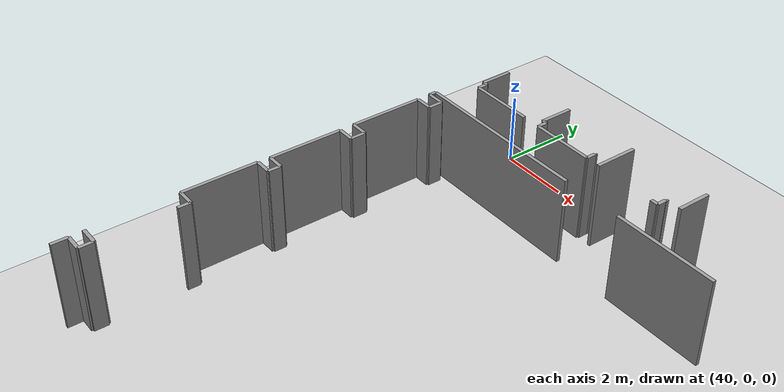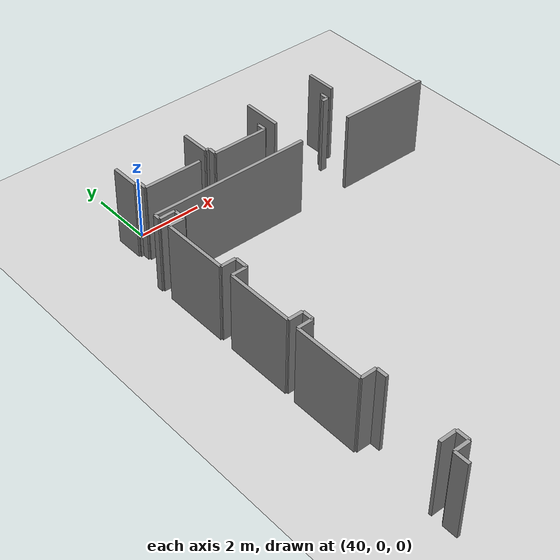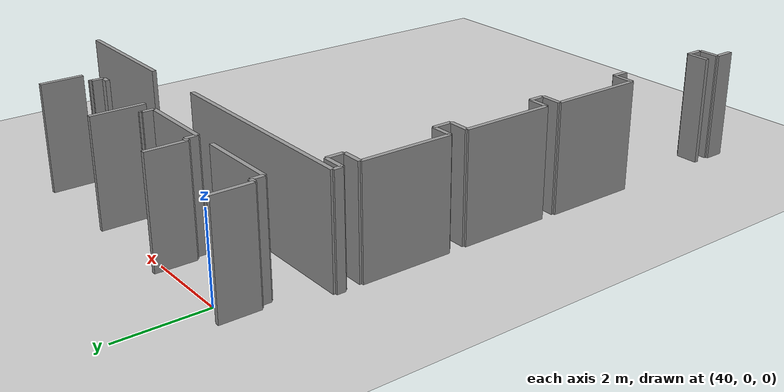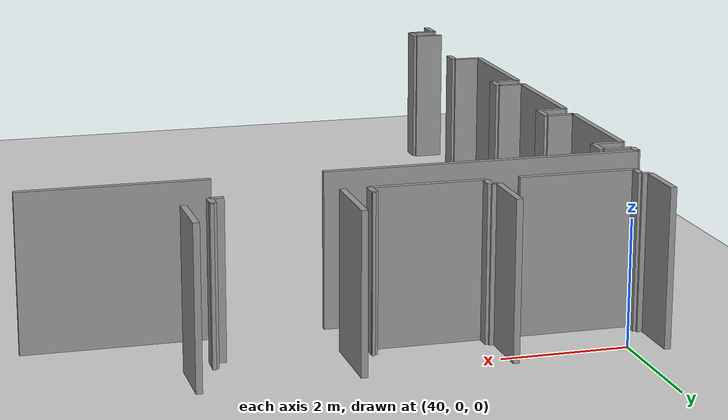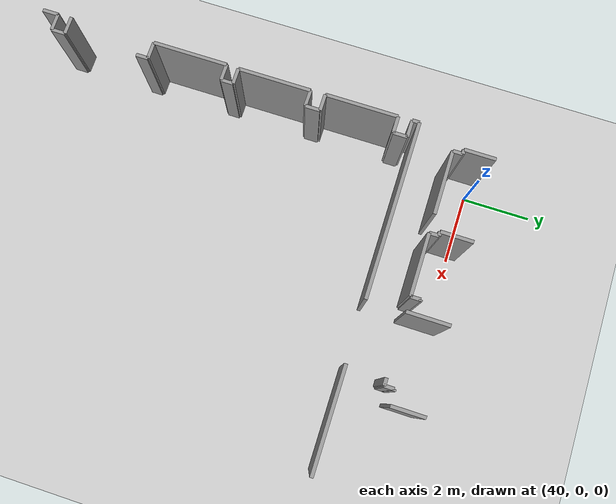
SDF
<sdf version="1.6">
 <world name="default">
  <model name="ground_plane">
   <static>1</static>
   <link name="link">
    <collision name="collision">
     <geometry><plane><normal>0 0 1</normal><size>100 100</size></plane></geometry>
     <surface><friction><ode><mu>100</mu><mu2>50</mu2></ode></friction></surface>
    </collision>
    <visual name="visual">
     <cast_shadows>0</cast_shadows>
     <geometry><plane><normal>0 0 1</normal><size>100 100</size></plane></geometry>
     <material>
      <script><uri>file://media/materials/scripts/gazebo.material</uri><name>Gazebo/Grey</name></script>
     </material>
    </visual>
   </link>
  </model>
  <model name="50010541">
   <static>1</static>
   <link name="Wall_275">
    <collision name="Wall_275_Collision">
     <geometry><box><size>0.953118454293 0.1 2.5</size></box></geometry>
     <pose>0.476559227146 0 1.25 0 0 0</pose>
    </collision>
    <visual name="Wall_275_Visual">
     <pose>0.476559227146 0 1.25 0 0 0</pose>
     <geometry><box><size>0.953118454293 0.1 2.5</size></box></geometry>
     <material>
      <script><uri>file://media/materials/scripts/gazebo.material</uri><name>Gazebo/Grey</name></script>
      <ambient>1 1 1 1</ambient>
     </material>
    </visual>
    <pose>99.5215365671 -13.7375750574 0 0 0 1.57079632679</pose>
   </link>
   <link name="Wall_278">
    <collision name="Wall_278_Collision">
     <geometry><box><size>0.0571261726734 0.1 2.5</size></box></geometry>
     <pose>0.0285630863367 0 1.25 0 0 0</pose>
    </collision>
    <visual name="Wall_278_Visual">
     <pose>0.0285630863367 0 1.25 0 0 0</pose>
     <geometry><box><size>0.0571261726734 0.1 2.5</size></box></geometry>
     <material>
      <script><uri>file://media/materials/scripts/gazebo.material</uri><name>Gazebo/Grey</name></script>
      <ambient>1 1 1 1</ambient>
     </material>
    </visual>
    <pose>99.1432343569 -13.7501428154 0 0 0 3.14159265359</pose>
   </link>
   <link name="Wall_279">
    <collision name="Wall_279_Collision">
     <geometry><box><size>0.271412793724 0.1 2.5</size></box></geometry>
     <pose>0.135706396862 0 1.25 0 0 0</pose>
    </collision>
    <visual name="Wall_279_Visual">
     <pose>0.135706396862 0 1.25 0 0 0</pose>
     <geometry><box><size>0.271412793724 0.1 2.5</size></box></geometry>
     <material>
      <script><uri>file://media/materials/scripts/gazebo.material</uri><name>Gazebo/Grey</name></script>
      <ambient>1 1 1 1</ambient>
     </material>
    </visual>
    <pose>99.0861081843 -13.7501428154 0 0 0 -1.57079632679</pose>
   </link>
   <link name="Wall_280">
    <collision name="Wall_280_Collision">
     <geometry><box><size>0.208193162632 0.1 2.5</size></box></geometry>
     <pose>0.104096581316 0 1.25 0 0 0</pose>
    </collision>
    <visual name="Wall_280_Visual">
     <pose>0.104096581316 0 1.25 0 0 0</pose>
     <geometry><box><size>0.208193162632 0.1 2.5</size></box></geometry>
     <material>
      <script><uri>file://media/materials/scripts/gazebo.material</uri><name>Gazebo/Grey</name></script>
      <ambient>1 1 1 1</ambient>
     </material>
    </visual>
    <pose>99.0861081843 -14.0215556092 0 0 0 3.14159265359</pose>
   </link>
   <link name="Wall_281">
    <collision name="Wall_281_Collision">
     <geometry><box><size>1.21564495449 0.1 2.5</size></box></geometry>
     <pose>0.607822477245 0 1.25 0 0 0</pose>
    </collision>
    <visual name="Wall_281_Visual">
     <pose>0.607822477245 0 1.25 0 0 0</pose>
     <geometry><box><size>1.21564495449 0.1 2.5</size></box></geometry>
     <material>
      <script><uri>file://media/materials/scripts/gazebo.material</uri><name>Gazebo/Grey</name></script>
      <ambient>1 1 1 1</ambient>
     </material>
    </visual>
    <pose>97.1070036688 -14.0215556092 0 0 0 1.57079632679</pose>
   </link>
   <link name="Wall_284">
    <collision name="Wall_284_Collision">
     <geometry><box><size>0.0469704086426 0.1 2.5</size></box></geometry>
     <pose>0.0234852043213 0 1.25 0 0 0</pose>
    </collision>
    <visual name="Wall_284_Visual">
     <pose>0.0234852043213 0 1.25 0 0 0</pose>
     <geometry><box><size>0.0469704086426 0.1 2.5</size></box></geometry>
     <material>
      <script><uri>file://media/materials/scripts/gazebo.material</uri><name>Gazebo/Grey</name></script>
      <ambient>1 1 1 1</ambient>
     </material>
    </visual>
    <pose>96.7413961637 -13.736559481 0 0 0 3.14159265359</pose>
   </link>
   <link name="Wall_285">
    <collision name="Wall_285_Collision">
     <geometry><box><size>0.275855940487 0.1 2.5</size></box></geometry>
     <pose>0.137927970244 0 1.25 0 0 0</pose>
    </collision>
    <visual name="Wall_285_Visual">
     <pose>0.137927970244 0 1.25 0 0 0</pose>
     <geometry><box><size>0.275855940487 0.1 2.5</size></box></geometry>
     <material>
      <script><uri>file://media/materials/scripts/gazebo.material</uri><name>Gazebo/Grey</name></script>
      <ambient>1 1 1 1</ambient>
     </material>
    </visual>
    <pose>96.694425755 -13.736559481 0 0 0 -1.57079632679</pose>
   </link>
   <link name="Wall_286">
    <collision name="Wall_286_Collision">
     <geometry><box><size>1.78106711691 0.1 2.5</size></box></geometry>
     <pose>0.890533558453 0 1.25 0 0 0</pose>
    </collision>
    <visual name="Wall_286_Visual">
     <pose>0.890533558453 0 1.25 0 0 0</pose>
     <geometry><box><size>1.78106711691 0.1 2.5</size></box></geometry>
     <material>
      <script><uri>file://media/materials/scripts/gazebo.material</uri><name>Gazebo/Grey</name></script>
      <ambient>1 1 1 1</ambient>
     </material>
    </visual>
    <pose>96.694425755 -14.0124154215 0 0 0 3.14159265359</pose>
   </link>
   <link name="Wall_287">
    <collision name="Wall_287_Collision">
     <geometry><box><size>0.270778058472 0.1 2.5</size></box></geometry>
     <pose>0.135389029236 0 1.25 0 0 0</pose>
    </collision>
    <visual name="Wall_287_Visual">
     <pose>0.135389029236 0 1.25 0 0 0</pose>
     <geometry><box><size>0.270778058472 0.1 2.5</size></box></geometry>
     <material>
      <script><uri>file://media/materials/scripts/gazebo.material</uri><name>Gazebo/Grey</name></script>
      <ambient>1 1 1 1</ambient>
     </material>
    </visual>
    <pose>94.9133586381 -14.0124154215 0 0 0 1.57079632679</pose>
   </link>
   <link name="Wall_288">
    <collision name="Wall_288_Collision">
     <geometry><box><size>0.120599697866 0.1 2.5</size></box></geometry>
     <pose>0.060299848933 0 1.25 0 0 0</pose>
    </collision>
    <visual name="Wall_288_Visual">
     <pose>0.060299848933 0 1.25 0 0 0</pose>
     <geometry><box><size>0.120599697866 0.1 2.5</size></box></geometry>
     <material>
      <script><uri>file://media/materials/scripts/gazebo.material</uri><name>Gazebo/Grey</name></script>
      <ambient>1 1 1 1</ambient>
     </material>
    </visual>
    <pose>94.9133586381 -13.7416373631 0 0 0 3.14159265359</pose>
   </link>
   <link name="Wall_289">
    <collision name="Wall_289_Collision">
     <geometry><box><size>0.922016426948 0.1 2.5</size></box></geometry>
     <pose>0.461008213474 0 1.25 0 0 0</pose>
    </collision>
    <visual name="Wall_289_Visual">
     <pose>0.461008213474 0 1.25 0 0 0</pose>
     <geometry><box><size>0.922016426948 0.1 2.5</size></box></geometry>
     <material>
      <script><uri>file://media/materials/scripts/gazebo.material</uri><name>Gazebo/Grey</name></script>
      <ambient>1 1 1 1</ambient>
     </material>
    </visual>
    <pose>94.7927589402 -13.7416373631 0 0 0 1.57079632679</pose>
   </link>
   <link name="Wall_294">
    <collision name="Wall_294_Collision">
     <geometry><box><size>1.84707958311 0.1 2.5</size></box></geometry>
     <pose>0.923539791553 0 1.25 0 0 0</pose>
    </collision>
    <visual name="Wall_294_Visual">
     <pose>0.923539791553 0 1.25 0 0 0</pose>
     <geometry><box><size>1.84707958311 0.1 2.5</size></box></geometry>
     <material>
      <script><uri>file://media/materials/scripts/gazebo.material</uri><name>Gazebo/Grey</name></script>
      <ambient>1 1 1 1</ambient>
     </material>
    </visual>
    <pose>94.3751031445 -14.016096886 0 0 0 3.14159265359</pose>
   </link>
   <link name="Wall_295">
    <collision name="Wall_295_Collision">
     <geometry><box><size>0.278521828545 0.1 2.5</size></box></geometry>
     <pose>0.139260914273 0 1.25 0 0 0</pose>
    </collision>
    <visual name="Wall_295_Visual">
     <pose>0.139260914273 0 1.25 0 0 0</pose>
     <geometry><box><size>0.278521828545 0.1 2.5</size></box></geometry>
     <material>
      <script><uri>file://media/materials/scripts/gazebo.material</uri><name>Gazebo/Grey</name></script>
      <ambient>1 1 1 1</ambient>
     </material>
    </visual>
    <pose>92.5280235614 -14.016096886 0 0 0 1.57079632679</pose>
   </link>
   <link name="Wall_296">
    <collision name="Wall_296_Collision">
     <geometry><box><size>0.129485991393 0.1 2.5</size></box></geometry>
     <pose>0.0647429956965 0 1.25 0 0 0</pose>
    </collision>
    <visual name="Wall_296_Visual">
     <pose>0.0647429956965 0 1.25 0 0 0</pose>
     <geometry><box><size>0.129485991393 0.1 2.5</size></box></geometry>
     <material>
      <script><uri>file://media/materials/scripts/gazebo.material</uri><name>Gazebo/Grey</name></script>
      <ambient>1 1 1 1</ambient>
     </material>
    </visual>
    <pose>92.5280235614 -13.7375750574 0 0 0 3.14159265359</pose>
   </link>
   <link name="Wall_297">
    <collision name="Wall_297_Collision">
     <geometry><box><size>0.901958792987 0.1 2.5</size></box></geometry>
     <pose>0.450979396494 0 1.25 0 0 0</pose>
    </collision>
    <visual name="Wall_297_Visual">
     <pose>0.450979396494 0 1.25 0 0 0</pose>
     <geometry><box><size>0.901958792987 0.1 2.5</size></box></geometry>
     <material>
      <script><uri>file://media/materials/scripts/gazebo.material</uri><name>Gazebo/Grey</name></script>
      <ambient>1 1 1 1</ambient>
     </material>
    </visual>
    <pose>92.39853757 -13.7375750574 0 0 0 1.57079632679</pose>
   </link>
   <link name="Wall_378">
    <collision name="Wall_378_Collision">
     <geometry><box><size>0.457009381387 0.1 2.5</size></box></geometry>
     <pose>0.228504690694 0 1.25 0 0 0</pose>
    </collision>
    <visual name="Wall_378_Visual">
     <pose>0.228504690694 0 1.25 0 0 0</pose>
     <geometry><box><size>0.457009381387 0.1 2.5</size></box></geometry>
     <material>
      <script><uri>file://media/materials/scripts/gazebo.material</uri><name>Gazebo/Grey</name></script>
      <ambient>1 1 1 1</ambient>
     </material>
    </visual>
    <pose>92.0418163584 -26.1612481434 0 0 0 1.57079632679</pose>
   </link>
   <link name="Wall_379">
    <collision name="Wall_379_Collision">
     <geometry><box><size>0.482398791464 0.1 2.5</size></box></geometry>
     <pose>0.241199395732 0 1.25 0 0 0</pose>
    </collision>
    <visual name="Wall_379_Visual">
     <pose>0.241199395732 0 1.25 0 0 0</pose>
     <geometry><box><size>0.482398791464 0.1 2.5</size></box></geometry>
     <material>
      <script><uri>file://media/materials/scripts/gazebo.material</uri><name>Gazebo/Grey</name></script>
      <ambient>1 1 1 1</ambient>
     </material>
    </visual>
    <pose>92.0418163584 -25.704238762 0 0 0 0.0</pose>
   </link>
   <link name="Wall_380">
    <collision name="Wall_380_Collision">
     <geometry><box><size>0.393535856194 0.1 2.5</size></box></geometry>
     <pose>0.196767928097 0 1.25 0 0 0</pose>
    </collision>
    <visual name="Wall_380_Visual">
     <pose>0.196767928097 0 1.25 0 0 0</pose>
     <geometry><box><size>0.393535856194 0.1 2.5</size></box></geometry>
     <material>
      <script><uri>file://media/materials/scripts/gazebo.material</uri><name>Gazebo/Grey</name></script>
      <ambient>1 1 1 1</ambient>
     </material>
    </visual>
    <pose>92.5242151499 -25.704238762 0 0 0 1.57079632679</pose>
   </link>
   <link name="Wall_381">
    <collision name="Wall_381_Collision">
     <geometry><box><size>0.52048290658 0.1 2.5</size></box></geometry>
     <pose>0.26024145329 0 1.25 0 0 0</pose>
    </collision>
    <visual name="Wall_381_Visual">
     <pose>0.26024145329 0 1.25 0 0 0</pose>
     <geometry><box><size>0.52048290658 0.1 2.5</size></box></geometry>
     <material>
      <script><uri>file://media/materials/scripts/gazebo.material</uri><name>Gazebo/Grey</name></script>
      <ambient>1 1 1 1</ambient>
     </material>
    </visual>
    <pose>92.5242151499 -25.3107029058 0 0 0 3.14159265359</pose>
   </link>
   <link name="Wall_384">
    <collision name="Wall_384_Collision">
     <geometry><box><size>0.350500806114 0.1 2.5</size></box></geometry>
     <pose>0.175250403057 0 1.25 0 0 0</pose>
    </collision>
    <visual name="Wall_384_Visual">
     <pose>0.175250403057 0 1.25 0 0 0</pose>
     <geometry><box><size>0.350500806114 0.1 2.5</size></box></geometry>
     <material>
      <script><uri>file://media/materials/scripts/gazebo.material</uri><name>Gazebo/Grey</name></script>
      <ambient>1 1 1 1</ambient>
     </material>
    </visual>
    <pose>92.5153288563 -23.1795158239 0 0 0 1.57079632679</pose>
   </link>
   <link name="Wall_385">
    <collision name="Wall_385_Collision">
     <geometry><box><size>0.492554555495 0.1 2.5</size></box></geometry>
     <pose>0.246277277747 0 1.25 0 0 0</pose>
    </collision>
    <visual name="Wall_385_Visual">
     <pose>0.246277277747 0 1.25 0 0 0</pose>
     <geometry><box><size>0.492554555495 0.1 2.5</size></box></geometry>
     <material>
      <script><uri>file://media/materials/scripts/gazebo.material</uri><name>Gazebo/Grey</name></script>
      <ambient>1 1 1 1</ambient>
     </material>
    </visual>
    <pose>92.5153288563 -22.8290150178 0 0 0 3.14159265359</pose>
   </link>
   <link name="Wall_386">
    <collision name="Wall_386_Collision">
     <geometry><box><size>2.15352976274 0.1 2.5</size></box></geometry>
     <pose>1.07676488137 0 1.25 0 0 0</pose>
    </collision>
    <visual name="Wall_386_Visual">
     <pose>1.07676488137 0 1.25 0 0 0</pose>
     <geometry><box><size>2.15352976274 0.1 2.5</size></box></geometry>
     <material>
      <script><uri>file://media/materials/scripts/gazebo.material</uri><name>Gazebo/Grey</name></script>
      <ambient>1 1 1 1</ambient>
     </material>
    </visual>
    <pose>92.0227743008 -22.8290150178 0 0 0 1.57079632679</pose>
   </link>
   <link name="Wall_387">
    <collision name="Wall_387_Collision">
     <geometry><box><size>0.476051438945 0.1 2.5</size></box></geometry>
     <pose>0.238025719472 0 1.25 0 0 0</pose>
    </collision>
    <visual name="Wall_387_Visual">
     <pose>0.238025719472 0 1.25 0 0 0</pose>
     <geometry><box><size>0.476051438945 0.1 2.5</size></box></geometry>
     <material>
      <script><uri>file://media/materials/scripts/gazebo.material</uri><name>Gazebo/Grey</name></script>
      <ambient>1 1 1 1</ambient>
     </material>
    </visual>
    <pose>92.0227743008 -20.6754852551 0 0 0 0.0</pose>
   </link>
   <link name="Wall_388">
    <collision name="Wall_388_Collision">
     <geometry><box><size>0.350627753164 0.1 2.5</size></box></geometry>
     <pose>0.175313876582 0 1.25 0 0 0</pose>
    </collision>
    <visual name="Wall_388_Visual">
     <pose>0.175313876582 0 1.25 0 0 0</pose>
     <geometry><box><size>0.350627753164 0.1 2.5</size></box></geometry>
     <material>
      <script><uri>file://media/materials/scripts/gazebo.material</uri><name>Gazebo/Grey</name></script>
      <ambient>1 1 1 1</ambient>
     </material>
    </visual>
    <pose>92.4988257398 -20.6754852551 0 0 0 1.57079632679</pose>
   </link>
   <link name="Wall_389">
    <collision name="Wall_389_Collision">
     <geometry><box><size>0.459548322395 0.1 2.5</size></box></geometry>
     <pose>0.229774161197 0 1.25 0 0 0</pose>
    </collision>
    <visual name="Wall_389_Visual">
     <pose>0.229774161197 0 1.25 0 0 0</pose>
     <geometry><box><size>0.459548322395 0.1 2.5</size></box></geometry>
     <material>
      <script><uri>file://media/materials/scripts/gazebo.material</uri><name>Gazebo/Grey</name></script>
      <ambient>1 1 1 1</ambient>
     </material>
    </visual>
    <pose>92.4988257398 -20.3248575019 0 0 0 3.14159265359</pose>
   </link>
   <link name="Wall_390">
    <collision name="Wall_390_Collision">
     <geometry><box><size>2.10338567783 0.1 2.5</size></box></geometry>
     <pose>1.05169283892 0 1.25 0 0 0</pose>
    </collision>
    <visual name="Wall_390_Visual">
     <pose>1.05169283892 0 1.25 0 0 0</pose>
     <geometry><box><size>2.10338567783 0.1 2.5</size></box></geometry>
     <material>
      <script><uri>file://media/materials/scripts/gazebo.material</uri><name>Gazebo/Grey</name></script>
      <ambient>1 1 1 1</ambient>
     </material>
    </visual>
    <pose>92.0392774174 -20.3248575019 0 0 0 1.57079632679</pose>
   </link>
   <link name="Wall_391">
    <collision name="Wall_391_Collision">
     <geometry><box><size>0.476051438945 0.1 2.5</size></box></geometry>
     <pose>0.238025719472 0 1.25 0 0 0</pose>
    </collision>
    <visual name="Wall_391_Visual">
     <pose>0.238025719472 0 1.25 0 0 0</pose>
     <geometry><box><size>0.476051438945 0.1 2.5</size></box></geometry>
     <material>
      <script><uri>file://media/materials/scripts/gazebo.material</uri><name>Gazebo/Grey</name></script>
      <ambient>1 1 1 1</ambient>
     </material>
    </visual>
    <pose>92.0392774174 -18.2214718241 0 0 0 0.0</pose>
   </link>
   <link name="Wall_392">
    <collision name="Wall_392_Collision">
     <geometry><box><size>0.425653459942 0.1 2.5</size></box></geometry>
     <pose>0.212826729971 0 1.25 0 0 0</pose>
    </collision>
    <visual name="Wall_392_Visual">
     <pose>0.212826729971 0 1.25 0 0 0</pose>
     <geometry><box><size>0.425653459942 0.1 2.5</size></box></geometry>
     <material>
      <script><uri>file://media/materials/scripts/gazebo.material</uri><name>Gazebo/Grey</name></script>
      <ambient>1 1 1 1</ambient>
     </material>
    </visual>
    <pose>92.5153288563 -18.2214718241 0 0 0 1.57079632679</pose>
   </link>
   <link name="Wall_393">
    <collision name="Wall_393_Collision">
     <geometry><box><size>0.483668261968 0.1 2.5</size></box></geometry>
     <pose>0.241834130984 0 1.25 0 0 0</pose>
    </collision>
    <visual name="Wall_393_Visual">
     <pose>0.241834130984 0 1.25 0 0 0</pose>
     <geometry><box><size>0.483668261968 0.1 2.5</size></box></geometry>
     <material>
      <script><uri>file://media/materials/scripts/gazebo.material</uri><name>Gazebo/Grey</name></script>
      <ambient>1 1 1 1</ambient>
     </material>
    </visual>
    <pose>92.5153288563 -17.7958183642 0 0 0 3.14159265359</pose>
   </link>
   <link name="Wall_394">
    <collision name="Wall_394_Collision">
     <geometry><box><size>2.0922143374 0.1 2.5</size></box></geometry>
     <pose>1.0461071687 0 1.25 0 0 0</pose>
    </collision>
    <visual name="Wall_394_Visual">
     <pose>1.0461071687 0 1.25 0 0 0</pose>
     <geometry><box><size>2.0922143374 0.1 2.5</size></box></geometry>
     <material>
      <script><uri>file://media/materials/scripts/gazebo.material</uri><name>Gazebo/Grey</name></script>
      <ambient>1 1 1 1</ambient>
     </material>
    </visual>
    <pose>92.0316605944 -17.7958183642 0 0 0 1.57079632679</pose>
   </link>
   <link name="Wall_395">
    <collision name="Wall_395_Collision">
     <geometry><box><size>0.488746143983 0.1 2.5</size></box></geometry>
     <pose>0.244373071992 0 1.25 0 0 0</pose>
    </collision>
    <visual name="Wall_395_Visual">
     <pose>0.244373071992 0 1.25 0 0 0</pose>
     <geometry><box><size>0.488746143983 0.1 2.5</size></box></geometry>
     <material>
      <script><uri>file://media/materials/scripts/gazebo.material</uri><name>Gazebo/Grey</name></script>
      <ambient>1 1 1 1</ambient>
     </material>
    </visual>
    <pose>92.0316605944 -15.7036040268 0 0 0 0.0</pose>
   </link>
   <link name="Wall_396">
    <collision name="Wall_396_Collision">
     <geometry><box><size>0.399248473462 0.1 2.5</size></box></geometry>
     <pose>0.199624236731 0 1.25 0 0 0</pose>
    </collision>
    <visual name="Wall_396_Visual">
     <pose>0.199624236731 0 1.25 0 0 0</pose>
     <geometry><box><size>0.399248473462 0.1 2.5</size></box></geometry>
     <material>
      <script><uri>file://media/materials/scripts/gazebo.material</uri><name>Gazebo/Grey</name></script>
      <ambient>1 1 1 1</ambient>
     </material>
    </visual>
    <pose>92.5204067383 -15.7036040268 0 0 0 1.57079632679</pose>
   </link>
   <link name="Wall_397">
    <collision name="Wall_397_Collision">
     <geometry><box><size>0.500171378518 0.1 2.5</size></box></geometry>
     <pose>0.250085689259 0 1.25 0 0 0</pose>
    </collision>
    <visual name="Wall_397_Visual">
     <pose>0.250085689259 0 1.25 0 0 0</pose>
     <geometry><box><size>0.500171378518 0.1 2.5</size></box></geometry>
     <material>
      <script><uri>file://media/materials/scripts/gazebo.material</uri><name>Gazebo/Grey</name></script>
      <ambient>1 1 1 1</ambient>
     </material>
    </visual>
    <pose>92.5204067383 -15.3043555533 0 0 0 3.14159265359</pose>
   </link>
   <link name="Wall_398">
    <collision name="Wall_398_Collision">
     <geometry><box><size>0.203242227667 0.1 2.5</size></box></geometry>
     <pose>0.101621113833 0 1.25 0 0 0</pose>
    </collision>
    <visual name="Wall_398_Visual">
     <pose>0.101621113833 0 1.25 0 0 0</pose>
     <geometry><box><size>0.203242227667 0.1 2.5</size></box></geometry>
     <material>
      <script><uri>file://media/materials/scripts/gazebo.material</uri><name>Gazebo/Grey</name></script>
      <ambient>1 1 1 1</ambient>
     </material>
    </visual>
    <pose>92.0202353598 -15.3043555533 0 0 0 1.57079632679</pose>
   </link>
   <link name="Wall_399">
    <collision name="Wall_399_Collision">
     <geometry><box><size>5.10200195498 0.1 2.5</size></box></geometry>
     <pose>2.55100097749 0 1.25 0 0 0</pose>
    </collision>
    <visual name="Wall_399_Visual">
     <pose>2.55100097749 0 1.25 0 0 0</pose>
     <geometry><box><size>5.10200195498 0.1 2.5</size></box></geometry>
     <material>
      <script><uri>file://media/materials/scripts/gazebo.material</uri><name>Gazebo/Grey</name></script>
      <ambient>1 1 1 1</ambient>
     </material>
    </visual>
    <pose>92.0202353598 -15.1011133256 0 0 0 0.0</pose>
   </link>
   <link name="Wall_400">
    <collision name="Wall_400_Collision">
     <geometry><box><size>2.92739898188 0.1 2.5</size></box></geometry>
     <pose>1.46369949094 0 1.25 0 0 0</pose>
    </collision>
    <visual name="Wall_400_Visual">
     <pose>1.46369949094 0 1.25 0 0 0</pose>
     <geometry><box><size>2.92739898188 0.1 2.5</size></box></geometry>
     <material>
      <script><uri>file://media/materials/scripts/gazebo.material</uri><name>Gazebo/Grey</name></script>
      <ambient>1 1 1 1</ambient>
     </material>
    </visual>
    <pose>98.8537950821 -15.1011133256 0 0 0 0.0</pose>
   </link>
   <pose>-52.95 13.0612481434 0 0 0 0</pose>
  </model>
 </world>
</sdf>
